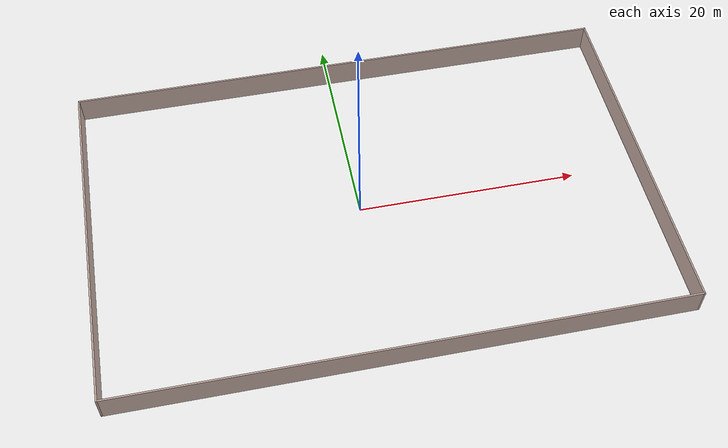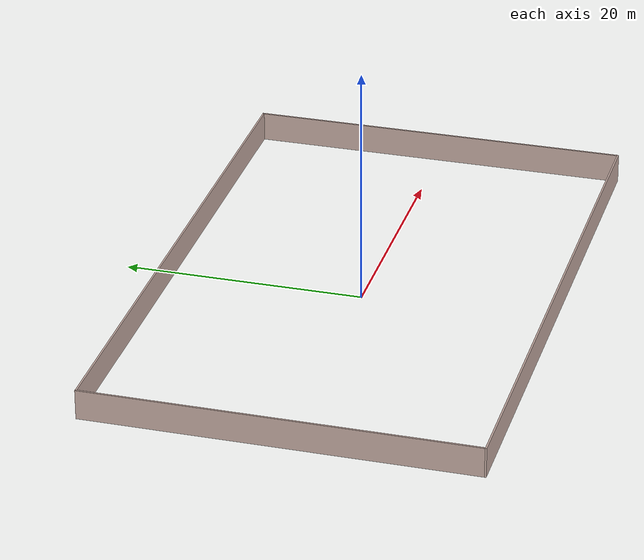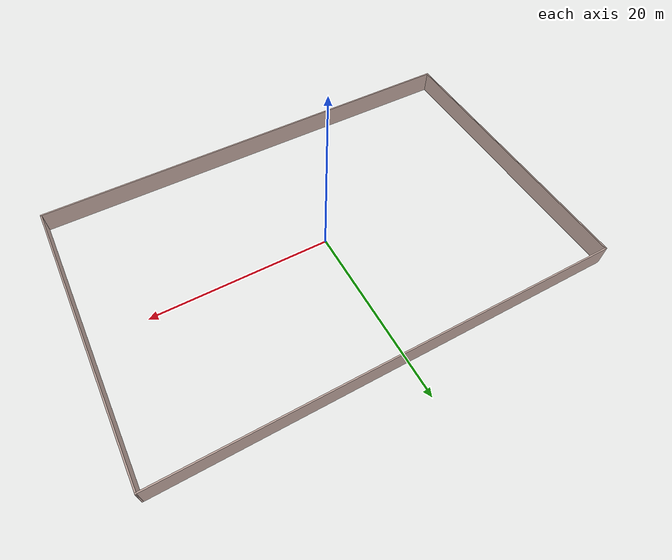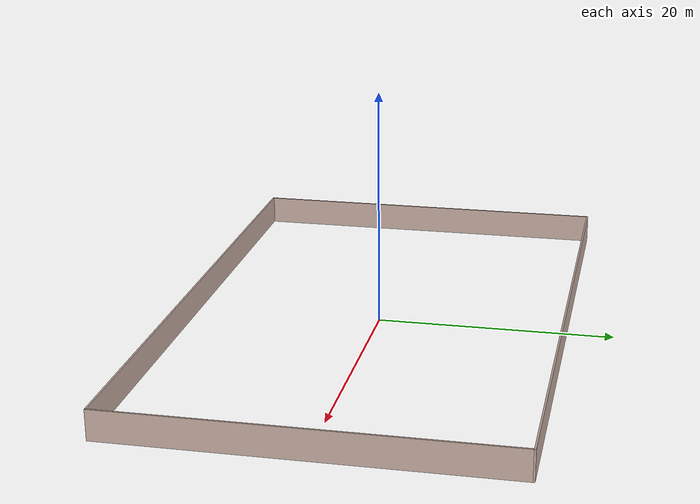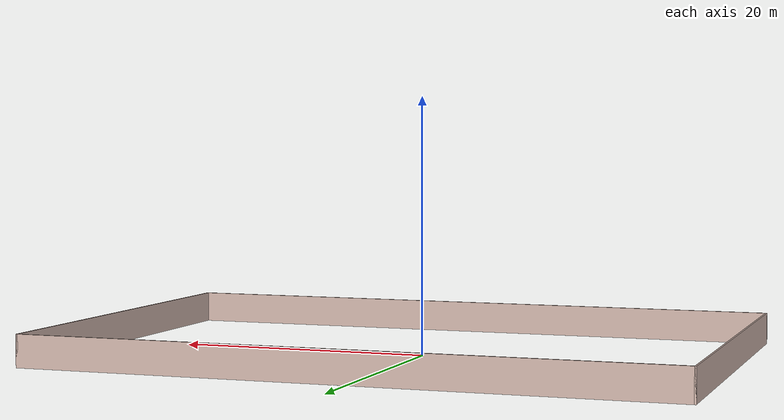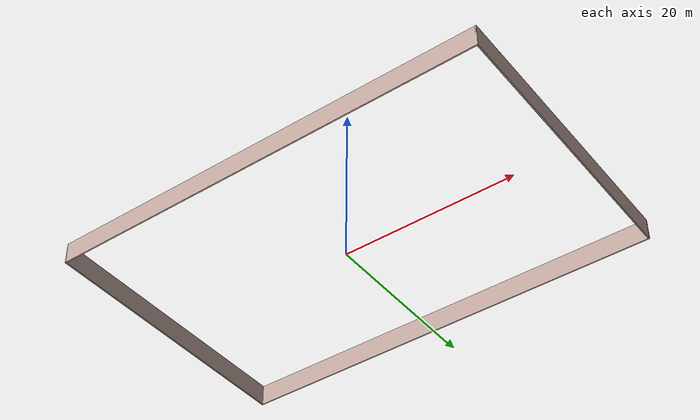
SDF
<?xml version='1.0'?>
<sdf version='1.6'>
  <model name='walls_50x32'>
    <pose frame=''>1 0 0 0 -0 0</pose>
    <link name='Wall_0'>
      <collision name='Wall_0_Collision'>
        <geometry>
          <box>
            <size>32.15 0.15 2.5</size>
          </box>
        </geometry>
        <pose frame=''>0 0 1.25 0 -0 0</pose>
      </collision>
      <visual name='Wall_0_Visual'>
        <pose frame=''>0 0 1.25 0 -0 0</pose>
        <geometry>
          <box>
            <size>32.15 0.15 2.5</size>
          </box>
        </geometry>
        <material>
          <script>
            <uri>file://media/materials/scripts/gazebo.material</uri>
            <name>Gazebo/Grey</name>
          </script>
          <ambient>0.760784 0.662745 0.627451 1</ambient>
        </material>
        <meta>
          <layer>0</layer>
        </meta>
      </visual>
      <pose frame=''>-25 0 0 0 -0 1.5708</pose>
    </link>
    <link name='Wall_2'>
      <collision name='Wall_2_Collision'>
        <geometry>
          <box>
            <size>50.15 0.15 2.5</size>
          </box>
        </geometry>
        <pose frame=''>0 0 1.25 0 -0 0</pose>
      </collision>
      <visual name='Wall_2_Visual'>
        <pose frame=''>0 0 1.25 0 -0 0</pose>
        <geometry>
          <box>
            <size>50.15 0.15 2.5</size>
          </box>
        </geometry>
        <material>
          <script>
            <uri>file://media/materials/scripts/gazebo.material</uri>
            <name>Gazebo/Grey</name>
          </script>
          <ambient>0.760784 0.662745 0.627451 1</ambient>
        </material>
        <meta>
          <layer>0</layer>
        </meta>
      </visual>
      <pose frame=''>0 -16 0 0 -0 0</pose>
    </link>
    <link name='Wall_4'>
      <collision name='Wall_4_Collision'>
        <geometry>
          <box>
            <size>32.15 0.15 2.5</size>
          </box>
        </geometry>
        <pose frame=''>0 0 1.25 0 -0 0</pose>
      </collision>
      <visual name='Wall_4_Visual'>
        <pose frame=''>0 0 1.25 0 -0 0</pose>
        <geometry>
          <box>
            <size>32.15 0.15 2.5</size>
          </box>
        </geometry>
        <material>
          <script>
            <uri>file://media/materials/scripts/gazebo.material</uri>
            <name>Gazebo/Grey</name>
          </script>
          <ambient>0.760784 0.662745 0.627451 1</ambient>
        </material>
        <meta>
          <layer>0</layer>
        </meta>
      </visual>
      <pose frame=''>25 0 0 0 -0 1.5708</pose>
    </link>
    <link name='Wall_6'>
      <collision name='Wall_6_Collision'>
        <geometry>
          <box>
            <size>50.15 0.15 2.5</size>
          </box>
        </geometry>
        <pose frame=''>0 0 1.25 0 -0 0</pose>
      </collision>
      <visual name='Wall_6_Visual'>
        <pose frame=''>0 0 1.25 0 -0 0</pose>
        <geometry>
          <box>
            <size>50.15 0.15 2.5</size>
          </box>
        </geometry>
        <material>
          <script>
            <uri>file://media/materials/scripts/gazebo.material</uri>
            <name>Gazebo/Grey</name>
          </script>
          <ambient>0.760784 0.662745 0.627451 1</ambient>
        </material>
        <meta>
          <layer>0</layer>
        </meta>
      </visual>
      <pose frame=''>0 16 0 0 -0 0</pose>
    </link>
    <static>1</static>
  </model>
</sdf>
